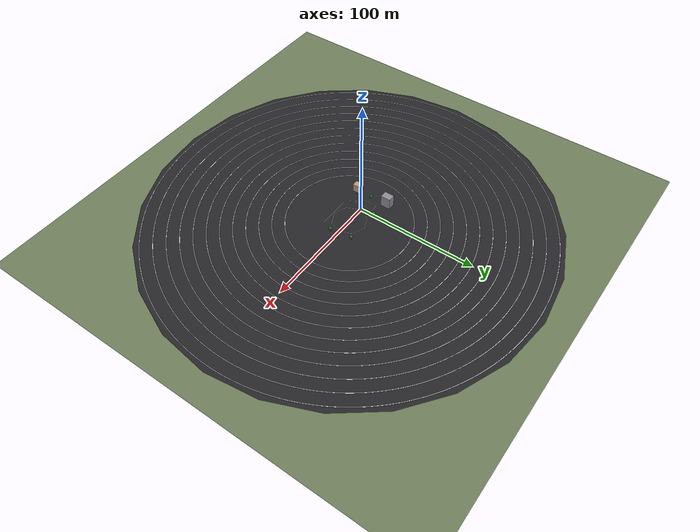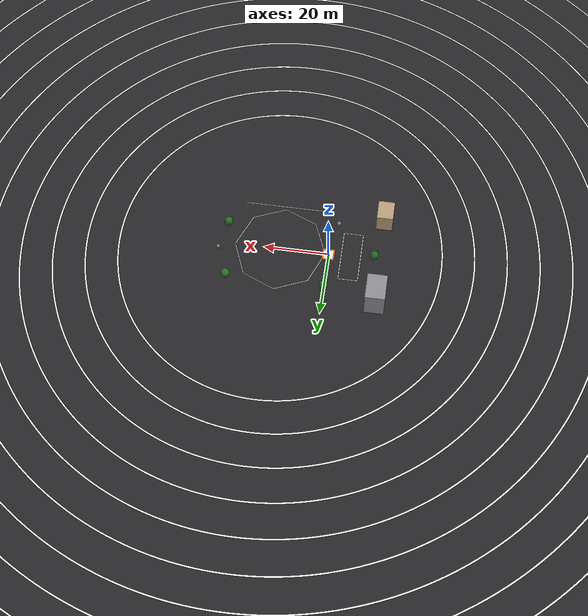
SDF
<sdf version="1.9">
 <world name="uav_tracking">
  <physics type="ode"><max_step_size>0.004</max_step_size><real_time_factor>1.0</real_time_factor></physics>
  <gravity>0 0 -9.8</gravity>
  <magnetic_field>-6e-07 4.0e-05 -2.2e-05</magnetic_field>
  <atmosphere type="adiabatic"/>
  <plugin filename="gz-sim-physics-system" name="gz::sim::systems::Physics"/>
  <plugin filename="gz-sim-user-commands-system" name="gz::sim::systems::UserCommands"/>
  <plugin filename="gz-sim-scene-broadcaster-system" name="gz::sim::systems::SceneBroadcaster"/>
  <plugin filename="gz-sim-contact-system" name="gz::sim::systems::Contact"/>
  <plugin filename="gz-sim-imu-system" name="gz::sim::systems::Imu"/>
  <plugin filename="gz-sim-magnetometer-system" name="gz::sim::systems::Magnetometer"/>
  <plugin filename="gz-sim-air-pressure-system" name="gz::sim::systems::AirPressure"/>
  <plugin filename="gz-sim-air-speed-system" name="gz::sim::systems::AirSpeed"/>
  <plugin filename="gz-sim-apply-link-wrench-system" name="gz::sim::systems::ApplyLinkWrench"/>
  <plugin filename="gz-sim-navsat-system" name="gz::sim::systems::NavSat"/>
  <plugin filename="gz-sim-sensors-system" name="gz::sim::systems::Sensors">
   <render_engine>ogre2</render_engine>
  </plugin>
  <scene>
   <ambient>0.6 0.6 0.6 1</ambient>
   <background>0.7 0.85 1.0 1</background>
   <shadows>true</shadows>
   <grid>false</grid>
  </scene>
  <spherical_coordinates>
   <surface_model>EARTH_WGS84</surface_model>
   <world_frame_orientation>ENU</world_frame_orientation>
   <latitude_deg>21.0060</latitude_deg>
   <longitude_deg>105.8430</longitude_deg>
   <elevation>12.0</elevation>
   <heading_deg>0</heading_deg>
  </spherical_coordinates>
  <light type="directional" name="sun">
   <pose>0 0 60 0 0 0</pose>
   <diffuse>0.9 0.9 0.85 1</diffuse>
   <specular>0.3 0.3 0.3 1</specular>
   <direction>-0.4 0.3 -0.85</direction>
   <attenuation>
    <range>1000</range>
    <constant>0.9</constant>
    <linear>0.01</linear>
    <quadratic>0.001</quadratic>
   </attenuation>
  </light>
  <model name="ground_plane">
   <static>true</static>
   <link name="link">
    <collision name="collision">
     <geometry><plane><normal>0 0 1</normal><size>380 380</size></plane></geometry>
     <surface><friction><ode><mu>1.0</mu><mu2>1.0</mu2></ode></friction></surface>
    </collision>
    <visual name="visual">
     <geometry><plane><normal>0 0 1</normal><size>380 380</size></plane></geometry>
     <material>
      <ambient>0.44 0.50 0.36 1</ambient>
      <diffuse>0.44 0.50 0.36 1</diffuse>
      <specular>0.05 0.05 0.05 1</specular>
     </material>
    </visual>
   </link>
  </model>
  <model name="asphalt_pad">
   <static>true</static>
   <pose>15 0 0.02 0 0 0</pose>
   <link name="link">
    <collision name="collision">
     <geometry><cylinder><radius>165</radius><length>0.04</length></cylinder></geometry>
    </collision>
    <visual name="visual">
     <geometry><cylinder><radius>165</radius><length>0.04</length></cylinder></geometry>
     <material><ambient>0.15 0.15 0.16 1</ambient><diffuse>0.15 0.15 0.16 1</diffuse></material>
    </visual>
   </link>
  </model>
  <model name="vehicle_lane_markers">
   <static>true</static>
   <pose>15 0 0.075 0 0 0</pose>
   <link name="link">
    <visual name="rings">
     <geometry><mesh><uri>model://uav_tracking_assets/car_lanes.obj</uri></mesh></geometry>
     <material><ambient>1 1 1 1</ambient><diffuse>1 1 1 1</diffuse></material>
    </visual>
   </link>
  </model>
  <model name="landing_pad">
   <static>true</static>
   <pose>0 0 0.07 0 0 0</pose>
   <link name="link">
    <collision name="collision">
     <pose>0 0 0.016 0 0 0</pose>
     <geometry><box><size>3.8 3.8 0.032</size></box></geometry>
    </collision>
    <visual name="border">
     <pose>0 0 0.01 0 0 0</pose>
     <geometry><box><size>3.8 3.8 0.02</size></box></geometry>
     <material><ambient>0.90 0.45 0.05 1</ambient><diffuse>0.90 0.45 0.05 1</diffuse></material>
    </visual>
    <visual name="center">
     <pose>0 0 0.022 0 0 0</pose>
     <geometry><box><size>3.0 3.0 0.02</size></box></geometry>
     <material><ambient>0.92 0.92 0.92 1</ambient><diffuse>0.92 0.92 0.92 1</diffuse></material>
    </visual>
   </link>
  </model>
  <model name="walker_path_markers">
   <static>true</static>
   <pose>0 0 0.085 0 0 0</pose>
   <link name="link">
    <visual name="paths">
     <geometry><mesh><uri>model://uav_tracking_assets/walker_paths.obj</uri></mesh></geometry>
     <material><ambient>1 1 1 1</ambient><diffuse>1 1 1 1</diffuse></material>
    </visual>
   </link>
  </model>
  <model name="building_1">
   <static>true</static>
   <pose>-16 14 5 0 0 0</pose>
   <link name="link">
    <collision name="collision"><geometry><box><size>6 8 10</size></box></geometry></collision>
    <visual name="visual">
     <geometry><box><size>6 8 10</size></box></geometry>
     <material><ambient>0.55 0.55 0.58 1</ambient><diffuse>0.55 0.55 0.58 1</diffuse></material>
    </visual>
   </link>
  </model>
  <model name="building_2">
   <static>true</static>
   <pose>-16 -14 3.5 0 0 0</pose>
   <link name="link">
    <collision name="collision"><geometry><box><size>5 6 7</size></box></geometry></collision>
    <visual name="visual">
     <geometry><box><size>5 6 7</size></box></geometry>
     <material><ambient>0.72 0.62 0.48 1</ambient><diffuse>0.72 0.62 0.48 1</diffuse></material>
    </visual>
   </link>
  </model>
  <model name="tree_1">
   <static>true</static>
   <pose>0 12 0 0 0 0</pose>
   <link name="link">
    <collision name="trunk_col">
     <pose>0 0 1.2 0 0 0</pose>
     <geometry><cylinder><radius>0.18</radius><length>2.4</length></cylinder></geometry>
    </collision>
    <visual name="trunk">
     <pose>0 0 1.2 0 0 0</pose>
     <geometry><cylinder><radius>0.18</radius><length>2.4</length></cylinder></geometry>
     <material><ambient>0.35 0.23 0.12 1</ambient><diffuse>0.35 0.23 0.12 1</diffuse></material>
    </visual>
    <visual name="leaf">
     <pose>0 0 3.0 0 0 0</pose>
     <geometry><sphere><radius>1.4</radius></sphere></geometry>
     <material><ambient>0.15 0.42 0.15 1</ambient><diffuse>0.15 0.42 0.15 1</diffuse></material>
    </visual>
   </link>
  </model>
  <model name="tree_2">
   <static>true</static>
   <pose>30 12 0 0 0 0</pose>
   <link name="link">
    <collision name="trunk_col">
     <pose>0 0 1.2 0 0 0</pose>
     <geometry><cylinder><radius>0.18</radius><length>2.4</length></cylinder></geometry>
    </collision>
    <visual name="trunk">
     <pose>0 0 1.2 0 0 0</pose>
     <geometry><cylinder><radius>0.18</radius><length>2.4</length></cylinder></geometry>
     <material><ambient>0.35 0.23 0.12 1</ambient><diffuse>0.35 0.23 0.12 1</diffuse></material>
    </visual>
    <visual name="leaf">
     <pose>0 0 3.0 0 0 0</pose>
     <geometry><sphere><radius>1.4</radius></sphere></geometry>
     <material><ambient>0.16 0.45 0.14 1</ambient><diffuse>0.16 0.45 0.14 1</diffuse></material>
    </visual>
   </link>
  </model>
  <model name="tree_3">
   <static>true</static>
   <pose>-14 0 0 0 0 0</pose>
   <link name="link">
    <collision name="trunk_col">
     <pose>0 0 1.2 0 0 0</pose>
     <geometry><cylinder><radius>0.18</radius><length>2.4</length></cylinder></geometry>
    </collision>
    <visual name="trunk">
     <pose>0 0 1.2 0 0 0</pose>
     <geometry><cylinder><radius>0.18</radius><length>2.4</length></cylinder></geometry>
     <material><ambient>0.35 0.23 0.12 1</ambient><diffuse>0.35 0.23 0.12 1</diffuse></material>
    </visual>
    <visual name="leaf">
     <pose>0 0 3.0 0 0 0</pose>
     <geometry><sphere><radius>1.4</radius></sphere></geometry>
     <material><ambient>0.14 0.40 0.16 1</ambient><diffuse>0.14 0.40 0.16 1</diffuse></material>
    </visual>
   </link>
  </model>
  <model name="tree_4">
   <static>true</static>
   <pose>32 -6 0 0 0 0</pose>
   <link name="link">
    <collision name="trunk_col">
     <pose>0 0 1.2 0 0 0</pose>
     <geometry><cylinder><radius>0.18</radius><length>2.4</length></cylinder></geometry>
    </collision>
    <visual name="trunk">
     <pose>0 0 1.2 0 0 0</pose>
     <geometry><cylinder><radius>0.18</radius><length>2.4</length></cylinder></geometry>
     <material><ambient>0.35 0.23 0.12 1</ambient><diffuse>0.35 0.23 0.12 1</diffuse></material>
    </visual>
    <visual name="leaf">
     <pose>0 0 3.0 0 0 0</pose>
     <geometry><sphere><radius>1.4</radius></sphere></geometry>
     <material><ambient>0.15 0.42 0.15 1</ambient><diffuse>0.15 0.42 0.15 1</diffuse></material>
    </visual>
   </link>
  </model>
  <model name="crate_1">
   <static>true</static>
   <pose>34 2 0.5 0 0 0.4</pose>
   <link name="link">
    <collision name="collision"><geometry><box><size>1 1 1</size></box></geometry></collision>
    <visual name="visual">
     <geometry><box><size>1 1 1</size></box></geometry>
     <material><ambient>0.6 0.45 0.2 1</ambient><diffuse>0.6 0.45 0.2 1</diffuse></material>
    </visual>
   </link>
  </model>
  <model name="crate_2">
   <static>true</static>
   <pose>-2 -11 0.5 0 0 -0.3</pose>
   <link name="link">
    <collision name="collision"><geometry><box><size>1 1 1</size></box></geometry></collision>
    <visual name="visual">
     <geometry><box><size>1 1 1</size></box></geometry>
     <material><ambient>0.5 0.5 0.55 1</ambient><diffuse>0.5 0.5 0.55 1</diffuse></material>
    </visual>
   </link>
  </model>
 </world>
</sdf>
